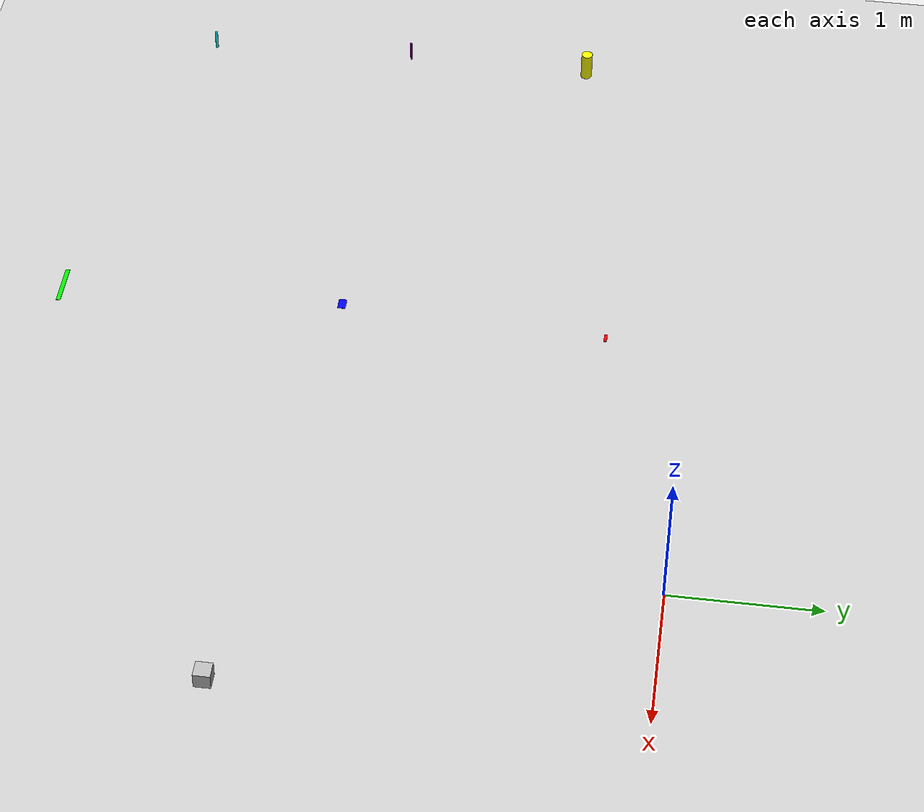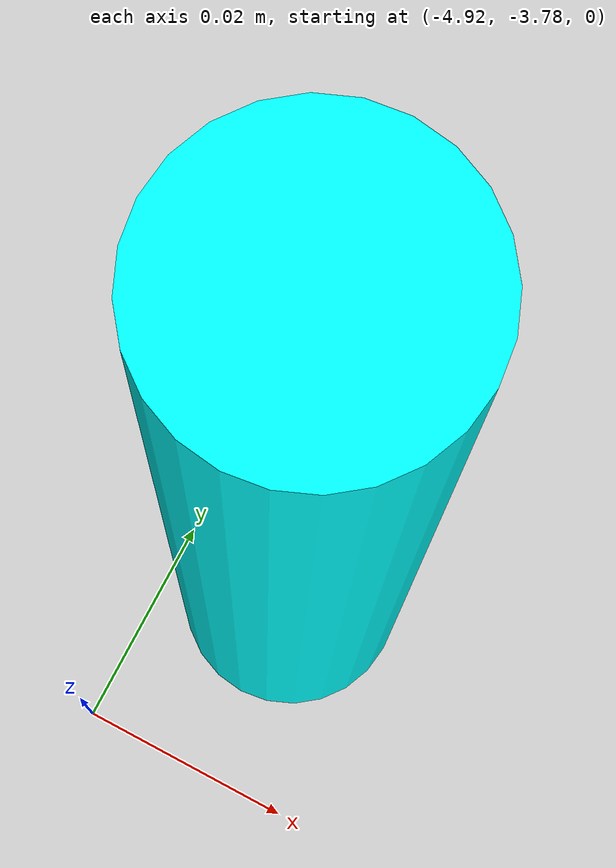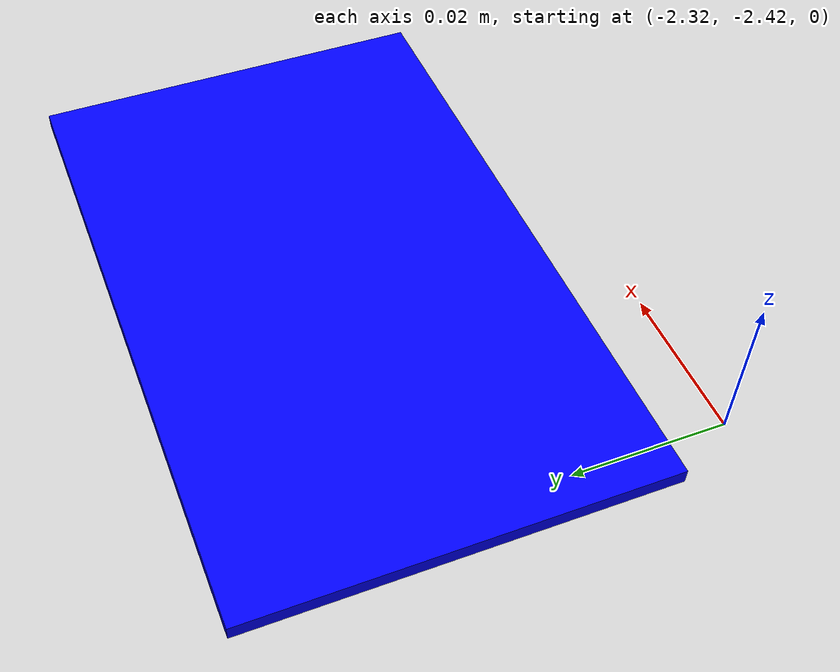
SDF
<sdf version='1.10'>
  <world name='empty'>
    <physics name='1ms' type='ignored'>
      <max_step_size>0.001</max_step_size>
      <real_time_factor>1</real_time_factor>
      <real_time_update_rate>1000</real_time_update_rate>
    </physics>
    <plugin name='gz::sim::systems::Physics' filename='gz-sim-physics-system'/>
    <plugin name='gz::sim::systems::UserCommands' filename='gz-sim-user-commands-system'/>
    <plugin name='gz::sim::systems::SceneBroadcaster' filename='gz-sim-scene-broadcaster-system'/>
    <plugin name='gz::sim::systems::Sensors' filename='gz-sim-sensors-system'>
      <render_engine>ogre2</render_engine>
    </plugin>
    <plugin name='gz::sim::systems::Contact' filename='gz-sim-contact-system'/>
    <gravity>0 0 -9.8000000000000007</gravity>
    <magnetic_field>5.5644999999999998e-06 2.2875799999999999e-05 -4.2388400000000002e-05</magnetic_field>
    <atmosphere type='adiabatic'/>
    <scene>
      <ambient>0.400000006 0.400000006 0.400000006 1</ambient>
      <background>0.699999988 0.699999988 0.699999988 1</background>
      <shadows>true</shadows>
    </scene>
    <model name='ground_plane'>
      <static>true</static>
      <link name='link'>
        <collision name='collision'>
          <geometry>
            <plane>
              <normal>0 0 1</normal>
              <size>100 100</size>
            </plane>
          </geometry>
          <surface>
            <friction>
              <ode/>
            </friction>
            <bounce/>
            <contact/>
          </surface>
        </collision>
        <visual name='visual'>
          <geometry>
            <plane>
              <normal>0 0 1</normal>
              <size>100 100</size>
            </plane>
          </geometry>
          <material>
            <ambient>0.800000012 0.800000012 0.800000012 1</ambient>
            <diffuse>0.800000012 0.800000012 0.800000012 1</diffuse>
            <specular>0.800000012 0.800000012 0.800000012 1</specular>
          </material>
        </visual>
        <pose>0 0 0 0 0 0</pose>
        <inertial>
          <pose>0 0 0 0 0 0</pose>
          <mass>1</mass>
          <inertia>
            <ixx>1</ixx>
            <ixy>0</ixy>
            <ixz>0</ixz>
            <iyy>1</iyy>
            <iyz>0</iyz>
            <izz>1</izz>
          </inertia>
        </inertial>
        <enable_wind>false</enable_wind>
      </link>
      <pose>0 0 0 0 0 0</pose>
      <self_collide>false</self_collide>
    </model>
    <model name='usb'>
      <pose>-2.1877 -0.5625 0.004999427531182511 -2.9438990006287009e-18 8.2051530411405317e-19 1.9391292631462133e-22</pose>
      <link name='box_link'>
        <inertial>
          <inertia>
            <ixx>0.16666</ixx>
            <ixy>0</ixy>
            <ixz>0</ixz>
            <iyy>0.16666</iyy>
            <iyz>0</iyz>
            <izz>0.16666</izz>
          </inertia>
          <mass>1</mass>
          <pose>0 0 0 0 0 0</pose>
        </inertial>
        <collision name='box_collision'>
          <geometry>
            <box>
              <size>0.059999999999999998 0.02 0.01</size>
            </box>
          </geometry>
          <surface>
            <friction>
              <ode/>
            </friction>
            <bounce/>
            <contact/>
          </surface>
        </collision>
        <visual name='box_visual'>
          <geometry>
            <box>
              <size>0.059999999999999998 0.02 0.01</size>
            </box>
          </geometry>
          <material>
            <ambient>1 0 0 1</ambient>
            <diffuse>1 0 0 1</diffuse>
            <specular>1 1 1 1</specular>
          </material>
        </visual>
        <pose>0 0 0 0 0 0</pose>
        <enable_wind>false</enable_wind>
      </link>
      <static>false</static>
      <self_collide>false</self_collide>
    </model>
    <model name='credit_card'>
      <pose>-2.2827000000000002 -2.3845999999999998 0.00099942750991263902 1.9131337221316477e-18 -1.2394725077456521e-18 -1.2463004071239639e-22</pose>
      <link name='box_link'>
        <inertial>
          <inertia>
            <ixx>0.16666</ixx>
            <ixy>0</ixy>
            <ixz>0</ixz>
            <iyy>0.16666</iyy>
            <iyz>0</iyz>
            <izz>0.16666</izz>
          </inertia>
          <mass>1</mass>
          <pose>0 0 0 0 0 0</pose>
        </inertial>
        <collision name='box_collision'>
          <geometry>
            <box>
              <size>0.085000000000000006 0.053999999999999999 0.002</size>
            </box>
          </geometry>
          <surface>
            <friction>
              <ode/>
            </friction>
            <bounce/>
            <contact/>
          </surface>
        </collision>
        <visual name='box_visual'>
          <geometry>
            <box>
              <size>0.085000000000000006 0.053999999999999999 0.002</size>
            </box>
          </geometry>
          <material>
            <ambient>0 0 1 1</ambient>
            <diffuse>0 0 1 1</diffuse>
            <specular>1 1 1 1</specular>
          </material>
        </visual>
        <pose>0 0 0 0 0 0</pose>
        <enable_wind>false</enable_wind>
      </link>
      <static>false</static>
      <self_collide>false</self_collide>
    </model>
    <model name='ruler'>
      <pose>-2.2071999999999998 -4.3262 0.0024994272302073894 5.1771331003388886e-18 1.2793369696025966e-19 3.0268283231094114e-23</pose>
      <link name='box_link'>
        <inertial>
          <inertia>
            <ixx>0.16666</ixx>
            <ixy>0</ixy>
            <ixz>0</ixz>
            <iyy>0.16666</iyy>
            <iyz>0</iyz>
            <izz>0.16666</izz>
          </inertia>
          <mass>1</mass>
          <pose>0 0 0 0 0 0</pose>
        </inertial>
        <collision name='box_collision'>
          <geometry>
            <box>
              <size>0.29999999999999999 0.029999999999999999 0.0050000000000000001</size>
            </box>
          </geometry>
          <surface>
            <friction>
              <ode/>
            </friction>
            <bounce/>
            <contact/>
          </surface>
        </collision>
        <visual name='box_visual'>
          <geometry>
            <box>
              <size>0.29999999999999999 0.029999999999999999 0.0050000000000000001</size>
            </box>
          </geometry>
          <material>
            <ambient>0 1 0 1</ambient>
            <diffuse>0 1 0 1</diffuse>
            <specular>1 1 1 1</specular>
          </material>
        </visual>
        <pose>0 0 0 0 0 0</pose>
        <enable_wind>false</enable_wind>
      </link>
      <static>false</static>
      <self_collide>false</self_collide>
    </model>
    <model name='bottle'>
      <pose>-4.9443999999999999 -0.96040000000000003 0.09999942868463399 4.5846356551404408e-18 2.6474742733841836e-18 -6.1681600475215076e-22</pose>
      <link name='cylinder_link'>
        <inertial>
          <inertia>
            <ixx>0.14580000000000001</ixx>
            <ixy>0</ixy>
            <ixz>0</ixz>
            <iyy>0.14580000000000001</iyy>
            <iyz>0</iyz>
            <izz>0.125</izz>
          </inertia>
          <mass>1</mass>
          <pose>0 0 0 0 0 0</pose>
        </inertial>
        <collision name='cylinder_collision'>
          <geometry>
            <cylinder>
              <radius>0.040000000000000001</radius>
              <length>0.20000000000000001</length>
            </cylinder>
          </geometry>
          <surface>
            <friction>
              <ode/>
            </friction>
            <bounce/>
            <contact/>
          </surface>
        </collision>
        <visual name='cylinder_visual'>
          <geometry>
            <cylinder>
              <radius>0.040000000000000001</radius>
              <length>0.20000000000000001</length>
            </cylinder>
          </geometry>
          <material>
            <ambient>1 1 0 1</ambient>
            <diffuse>1 1 0 1</diffuse>
            <specular>1 1 1 1</specular>
          </material>
        </visual>
        <pose>0 0 0 0 0 0</pose>
        <enable_wind>false</enable_wind>
      </link>
      <static>false</static>
      <self_collide>false</self_collide>
    </model>
    <model name='pen'>
      <pose>-4.9618000000000002 -2.2844000000000002 0.074999428699142362 -1.7566112495865979e-17 1.5568053478973905e-17 3.4629627545343063e-22</pose>
      <link name='cylinder_link'>
        <inertial>
          <inertia>
            <ixx>0.14580000000000001</ixx>
            <ixy>0</ixy>
            <ixz>0</ixz>
            <iyy>0.14580000000000001</iyy>
            <iyz>0</iyz>
            <izz>0.125</izz>
          </inertia>
          <mass>1</mass>
          <pose>0 0 0 0 0 0</pose>
        </inertial>
        <collision name='cylinder_collision'>
          <geometry>
            <cylinder>
              <radius>0.0060000000000000001</radius>
              <length>0.14999999999999999</length>
            </cylinder>
          </geometry>
          <surface>
            <friction>
              <ode/>
            </friction>
            <bounce/>
            <contact/>
          </surface>
        </collision>
        <visual name='cylinder_visual'>
          <geometry>
            <cylinder>
              <radius>0.0060000000000000001</radius>
              <length>0.14999999999999999</length>
            </cylinder>
          </geometry>
          <material>
            <ambient>1 0 1 1</ambient>
            <diffuse>1 0 1 1</diffuse>
            <specular>1 1 1 1</specular>
          </material>
        </visual>
        <pose>0 0 0 0 0 0</pose>
        <enable_wind>false</enable_wind>
      </link>
      <static>false</static>
      <self_collide>false</self_collide>
    </model>
    <model name='marker'>
      <pose>-4.9086999999999996 -3.7614000000000001 0.069999428698548652 -2.0268109770535098e-20 -9.0201230259192852e-18 -1.0676164708746741e-21</pose>
      <link name='cylinder_link'>
        <inertial>
          <inertia>
            <ixx>0.14580000000000001</ixx>
            <ixy>0</ixy>
            <ixz>0</ixz>
            <iyy>0.14580000000000001</iyy>
            <iyz>0</iyz>
            <izz>0.125</izz>
          </inertia>
          <mass>1</mass>
          <pose>0 0 0 0 0 0</pose>
        </inertial>
        <collision name='cylinder_collision'>
          <geometry>
            <cylinder>
              <radius>0.01</radius>
              <length>0.14000000000000001</length>
            </cylinder>
          </geometry>
          <surface>
            <friction>
              <ode/>
            </friction>
            <bounce/>
            <contact/>
          </surface>
        </collision>
        <visual name='cylinder_visual'>
          <geometry>
            <cylinder>
              <radius>0.01</radius>
              <length>0.14000000000000001</length>
            </cylinder>
          </geometry>
          <material>
            <ambient>0 1 1 1</ambient>
            <diffuse>0 1 1 1</diffuse>
            <specular>1 1 1 1</specular>
          </material>
        </visual>
        <pose>0 0 0 0 0 0</pose>
        <enable_wind>false</enable_wind>
      </link>
      <static>false</static>
      <self_collide>false</self_collide>
    </model>
    <model name='depth_camera'>
      <pose>2 -2.3999999999999999 1.2 0 0 3.1400000000000001</pose>
      <link name='link'>
        <pose>0.050000000000000003 0.050000000000000003 0.050000000000000003 0 0 0</pose>
        <inertial>
          <mass>0.10000000000000001</mass>
          <inertia>
            <ixx>0.00016666700000000001</ixx>
            <iyy>0.00016666700000000001</iyy>
            <izz>0.00016666700000000001</izz>
            <ixy>0</ixy>
            <ixz>0</ixz>
            <iyz>0</iyz>
          </inertia>
          <pose>0 0 0 0 0 0</pose>
        </inertial>
        <collision name='collision'>
          <geometry>
            <box>
              <size>0.10000000000000001 0.10000000000000001 0.10000000000000001</size>
            </box>
          </geometry>
          <surface>
            <friction>
              <ode/>
            </friction>
            <bounce/>
            <contact/>
          </surface>
        </collision>
        <visual name='visual'>
          <geometry>
            <box>
              <size>0.10000000000000001 0.10000000000000001 0.10000000000000001</size>
            </box>
          </geometry>
        </visual>
        <sensor name='depth_camera1' type='depth_camera'>
          <pose>0 0 0 0 0 0</pose>
          <topic>depth_camera</topic>
          <update_rate>10</update_rate>
          <enable_metrics>false</enable_metrics>
          <camera>
            <pose>0 0 0 0 0 0</pose>
            <horizontal_fov>1.05</horizontal_fov>
            <image>
              <width>256</width>
              <height>256</height>
              <format>R_FLOAT32</format>
              <anti_aliasing>4</anti_aliasing>
            </image>
            <camera_info_topic>__default__</camera_info_topic>
            <trigger_topic></trigger_topic>
            <triggered>false</triggered>
            <clip>
              <near>0.10000000000000001</near>
              <far>10</far>
            </clip>
            <save enabled='false'>
              <path>__default__</path>
            </save>
            <visibility_mask>4294967295</visibility_mask>
            <noise>
              <type>none</type>
              <mean>0</mean>
              <stddev>0</stddev>
            </noise>
            <distortion>
              <k1>0</k1>
              <k2>0</k2>
              <k3>0</k3>
              <p1>0</p1>
              <p2>0</p2>
              <center>0.5 0.5</center>
            </distortion>
            <lens>
              <type>stereographic</type>
              <scale_to_hfov>true</scale_to_hfov>
              <cutoff_angle>1.5707963267948966</cutoff_angle>
              <env_texture_size>256</env_texture_size>
            </lens>
            <optical_frame_id></optical_frame_id>
          </camera>
        </sensor>
        <sensor name='rgb_camera' type='camera'>
          <pose>0 0 0 0 0 0</pose>
          <topic>rgb_camera</topic>
          <update_rate>10</update_rate>
          <enable_metrics>false</enable_metrics>
          <camera>
            <pose>0 0 0 0 0 0</pose>
            <horizontal_fov>1.05</horizontal_fov>
            <image>
              <width>640</width>
              <height>480</height>
              <format>RGB_INT8</format>
              <anti_aliasing>4</anti_aliasing>
            </image>
            <camera_info_topic>__default__</camera_info_topic>
            <trigger_topic></trigger_topic>
            <triggered>false</triggered>
            <clip>
              <near>0.10000000000000001</near>
              <far>10</far>
            </clip>
            <save enabled='false'>
              <path>__default__</path>
            </save>
            <visibility_mask>4294967295</visibility_mask>
            <noise>
              <type>none</type>
              <mean>0</mean>
              <stddev>0</stddev>
            </noise>
            <distortion>
              <k1>0</k1>
              <k2>0</k2>
              <k3>0</k3>
              <p1>0</p1>
              <p2>0</p2>
              <center>0.5 0.5</center>
            </distortion>
            <lens>
              <type>stereographic</type>
              <scale_to_hfov>true</scale_to_hfov>
              <cutoff_angle>1.5707963267948966</cutoff_angle>
              <env_texture_size>256</env_texture_size>
            </lens>
            <optical_frame_id></optical_frame_id>
          </camera>
        </sensor>
        <enable_wind>false</enable_wind>
      </link>
      <static>true</static>
      <self_collide>false</self_collide>
    </model>
    <light name='sun' type='directional'>
      <pose>0 0 10 0 0 0</pose>
      <cast_shadows>true</cast_shadows>
      <intensity>1</intensity>
      <direction>-0.5 0.10000000000000001 -0.90000000000000002</direction>
      <diffuse>0.800000012 0.800000012 0.800000012 1</diffuse>
      <specular>0.200000003 0.200000003 0.200000003 1</specular>
      <attenuation>
        <range>1000</range>
        <linear>0.0099999997764825821</linear>
        <constant>0.89999997615814209</constant>
        <quadratic>0.0010000000474974513</quadratic>
      </attenuation>
      <spot>
        <inner_angle>0</inner_angle>
        <outer_angle>0</outer_angle>
        <falloff>0</falloff>
      </spot>
    </light>
  </world>
</sdf>
